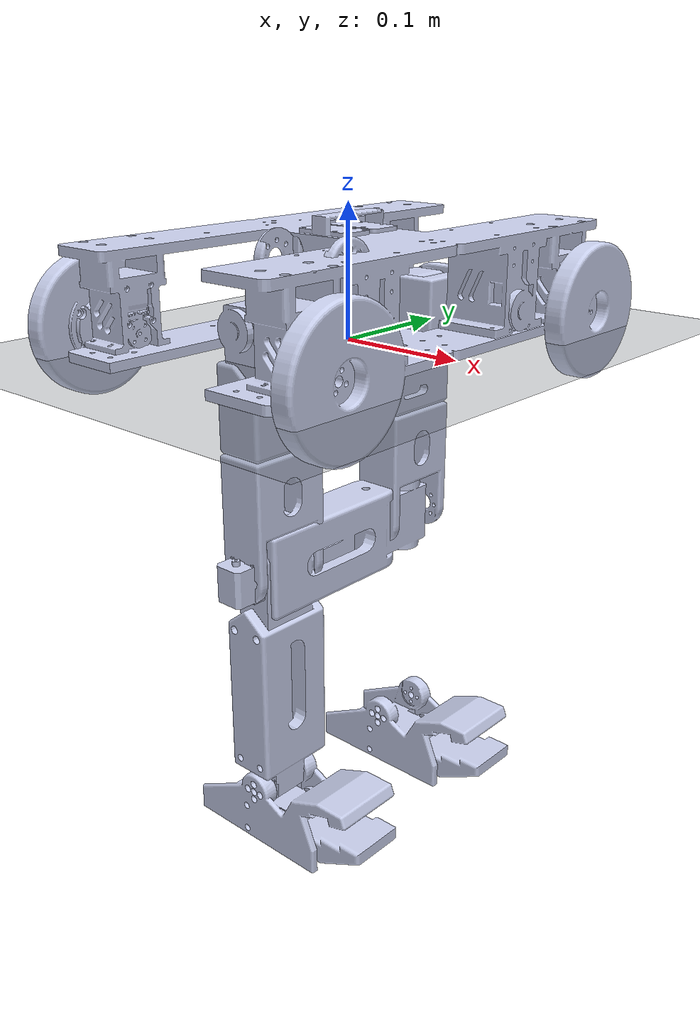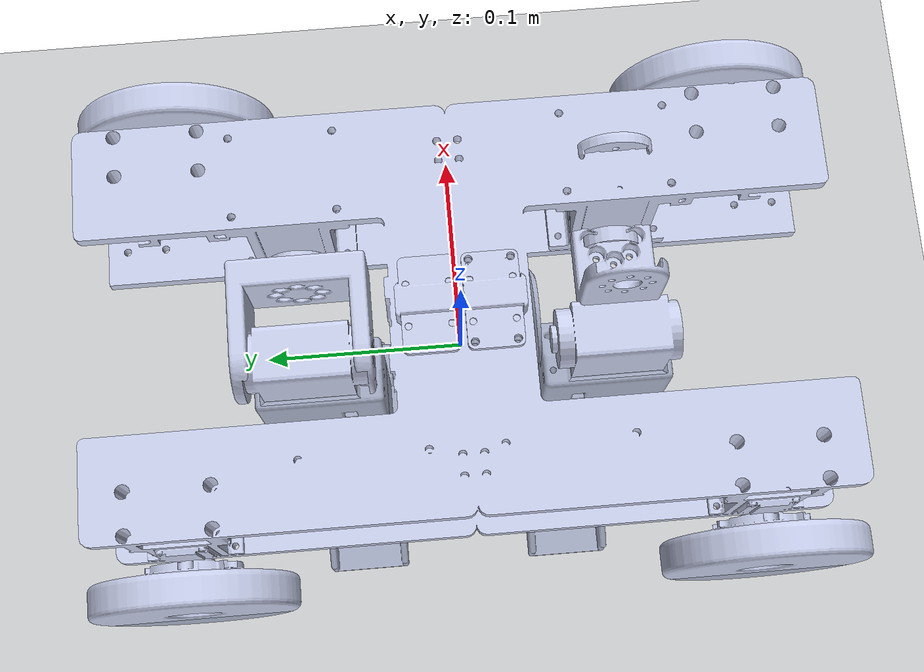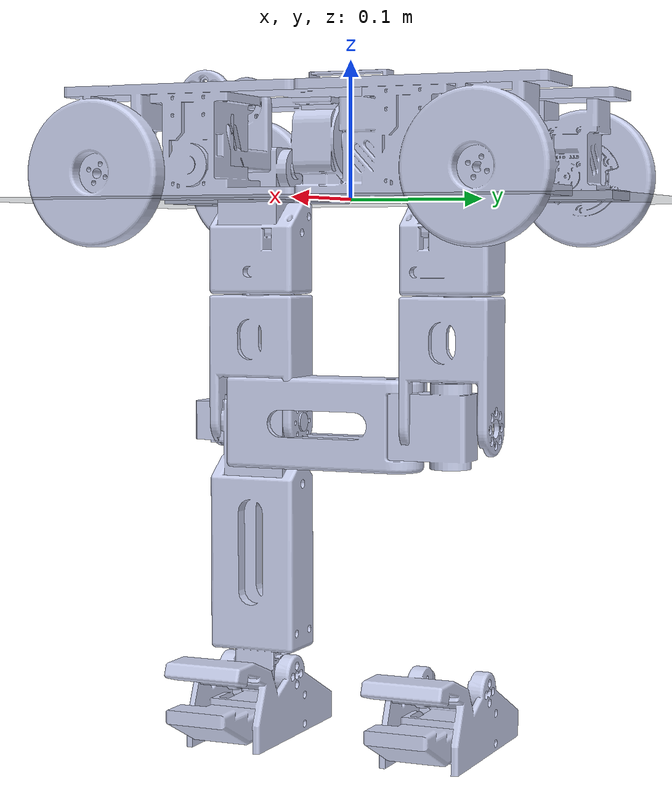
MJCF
<mujoco model="Fulltrans">
  <compiler angle="radian" meshdir="/home/lenovo-loq/Desktop/TransformBipedal_Simulation/FullForm/meshes/"/>

  <asset>
    <mesh name="Baselink" file="Baselink.STL"/>
    <mesh name="IMUleft" file="IMUleft.STL"/>
    <mesh name="IMUright" file="IMUright.STL"/>
    <mesh name="Bubleft" file="Bubleft.STL"/>
    <mesh name="Hipleft_fixed" file="Hipleft_fixed.STL"/>
    <mesh name="Twistleft" file="Twistleft.STL"/>
    <mesh name="Kneeleft" file="Kneeleft.STL"/>
    <mesh name="Footleft" file="Footleft.STL"/>
    <mesh name="Bubright" file="Bubright.STL"/>
    <mesh name="Hipright_fixed" file="Hipright_fixed.STL"/>
    <mesh name="Twistright" file="Twistright.STL"/>
    <mesh name="Kneeright" file="Kneeright.STL"/>
    <mesh name="Footright" file="Footright.STL"/>
  </asset>

  <worldbody>
    <geom name="floor" size="5 5 0.1" type="plane" rgba="0.35 0.38 0.42 1"/>
    <light pos="0 0 3" dir="0 0 -1" type="directional"/>
    <body name="Baselink">
      <inertial pos="0.0177911 -0.000635638 0.0390763" quat="-0.00258177 0.70659 -0.00201003 0.707615" mass="1.22784" diaginertia="0.00558072 0.00367027 0.00229888"/>
      <joint type="free"/>
      <geom type="mesh" rgba="0.792157 0.819608 0.933333 1" mesh="Baselink"/>
      <body name="IMUleft" pos="-2.3585e-05 -0.015 0.0851" quat="-2.59734e-06 0.707105 -0.707108 2.59735e-06">
        <inertial pos="0.00129188 4.07734e-06 0.00236819" quat="0.518251 0.517605 -0.481816 0.480994" mass="0.00446702" diaginertia="9.08703e-07 6.8303e-07 3.76042e-07"/>
        <geom type="mesh" rgba="0.792157 0.819608 0.933333 1" mesh="IMUleft"/>
      </body>
      <body name="IMUright" pos="0 0.015 0.0851" quat="-2.59734e-06 0.707105 0.707108 -2.59735e-06">
        <inertial pos="0.000870136 6.27414e-09 0.00672513" quat="0.583905 0.583905 -0.398817 0.398817" mass="0.00662927" diaginertia="2.01524e-06 1.89257e-06 9.54365e-07"/>
        <geom type="mesh" rgba="0.792157 0.819608 0.933333 1" mesh="IMUright"/>
      </body>
      <body name="Bubleft" pos="0.04025 -0.07995 0.0229">
        <inertial pos="-0.0169537 -0.000710753 1.81785e-08" quat="0.515234 0.484288 -0.515233 0.484287" mass="0.0588146" diaginertia="5.59461e-05 4.86446e-05 2.45895e-05"/>
        <joint name="Bubleft_joint" pos="0 0 0" axis="-1 0 0" range="-0.25 3.1382" actuatorfrcrange="-10.3 10.3" armature="0.08"/>
        <geom type="mesh" rgba="0.792157 0.819608 0.933333 1" mesh="Bubleft"/>
        <body name="Hipleft" pos="-0.04695 0.0003 0">
          <inertial pos="-0.000420505 0.00251977 -0.0421973" quat="0.504699 0.862412 -0.0203883 0.0332878" mass="0.226262" diaginertia="0.000137716 0.000101532 8.45504e-05"/>
          <joint name="Hipleft_joint" pos="0 0 0" axis="0 -1 0" range="-0.651 0.651" actuatorfrcrange="-10.3 10.3" armature="0.08"/>
          <geom type="mesh" rgba="0.792157 0.819608 0.933333 1" mesh="Hipleft_fixed"/>
          <body name="Twistleft" pos="0.0001 -0.0003 -0.09155">
            <inertial pos="-1.07076e-08 0.00397215 -0.0391681" quat="0.988229 -0.152984 0 0" mass="0.0860126" diaginertia="0.000122099 8.20701e-05 7.1975e-05"/>
            <joint name="Twistleft_joint" pos="0 0 0" axis="0 0 -1" range="-3.14 3.14" actuatorfrcrange="-2.94 2.94" armature="0.08"/>
            <geom type="mesh" rgba="0.792157 0.819608 0.933333 1" mesh="Twistleft"/>
            <body name="Kneeleft" pos="0 0.0048 -0.09355">
              <inertial pos="-9.06819e-05 2.18579e-05 -0.0856666" quat="0.999996 -0.00281179 7.22286e-09 2.56877e-06" mass="0.332394" diaginertia="0.00047372 0.000381551 0.000178541"/>
              <joint name="Kneeleft_joint" pos="0 0 0" axis="0 -1 0" range="-2.2 2.2" actuatorfrcrange="-10.3 10.3" armature="0.08"/>
              <geom type="mesh" rgba="0.792157 0.819608 0.933333 1" mesh="Kneeleft"/>
              <body name="Footleft" pos="-0.0003 -0.00125 -0.19">
                <inertial pos="0.036674 0.000787773 -0.0173791" quat="8.91563e-05 0.567813 0.000340765 0.823157" mass="0.213823" diaginertia="0.000295779 0.000254522 9.78886e-05"/>
                <joint name="Footleft_joint" pos="0 0 0" axis="0 -1 0" range="-1.1381 0.7027" actuatorfrcrange="-2.94 2.94" armature="0.08"/>
                <geom type="mesh" rgba="0.792157 0.819608 0.933333 1" mesh="Footleft"/>
              </body>
            </body>
          </body>
        </body>
      </body>
      <body name="Bubright" pos="0.04025 0.07995 0.0229">
        <inertial pos="-0.0169537 0.000710753 -1.81785e-08" quat="0.484287 0.515233 -0.484288 0.515234" mass="0.0588146" diaginertia="5.59461e-05 4.86446e-05 2.45895e-05"/>
        <joint name="Bubright_joint" pos="0 0 0" axis="1 0 0" range="-0.25 3.1382" actuatorfrcrange="-10.3 10.3" armature="0.08"/>
        <geom type="mesh" rgba="0.792157 0.819608 0.933333 1" mesh="Bubright"/>
        <body name="Hipright" pos="-0.04695 -0.0003 0">
          <inertial pos="-0.000420522 -0.00251974 -0.0421972" quat="0.862411 0.504701 -0.0332881 0.0203894" mass="0.226261" diaginertia="0.000137716 0.000101532 8.45506e-05"/>
          <joint name="Hipright_joint" pos="0 0 0" axis="0 -1 0" range="-0.651 0.651" actuatorfrcrange="-10.3 10.3" armature="0.08"/>
          <geom type="mesh" rgba="0.792157 0.819608 0.933333 1" mesh="Hipright_fixed"/>
          <body name="Twistright" pos="0.0001 0.0003 -0.09155">
            <inertial pos="1.01134e-08 -0.00397215 -0.0391681" quat="0.988229 0.152984 0 0" mass="0.0860126" diaginertia="0.000122099 8.20701e-05 7.1975e-05"/>
            <joint name="Twistright_joint" pos="0 0 0" axis="0 0 1" range="-3.14 3.14" actuatorfrcrange="-2.94 2.94" armature="0.08"/>
            <geom type="mesh" rgba="0.792157 0.819608 0.933333 1" mesh="Twistright"/>
            <body name="Kneeright" pos="0 -0.0051 -0.09355">
              <inertial pos="9.06819e-05 -7.63338e-05 -0.0856666" quat="0.999996 0.00281179 -7.22286e-09 2.56877e-06" mass="0.332394" diaginertia="0.00047372 0.000381551 0.000178541"/>
              <joint name="Kneeright_joint" pos="0 0 0" axis="0 -1 0" range="-2.2 2.2" actuatorfrcrange="-10.3 10.3" armature="0.08"/>
              <geom type="mesh" rgba="0.792157 0.819608 0.933333 1" mesh="Kneeright"/>
              <body name="Footright" pos="0.0003 0.00105 -0.19">
                <inertial pos="0.036674 -0.000213862 -0.0172789" quat="8.91582e-05 0.567813 0.000340773 0.823157" mass="0.213823" diaginertia="0.000295779 0.000254522 9.78886e-05"/>
                <joint name="Footright_joint" pos="0 0 0" axis="0 -1 0" range="-1.1381 0.7027" actuatorfrcrange="-2.94 2.94" armature="0.08"/>
                <geom type="mesh" rgba="0.792157 0.819608 0.933333 1" mesh="Footright"/>
              </body>
            </body>
          </body>
        </body>
      </body>
    </body>
  </worldbody>

  <contact>
    <exclude name="Baselink__IMUleft" body1="Baselink" body2="IMUleft"/>
    <exclude name="Baselink__IMUright" body1="Baselink" body2="IMUright"/>
    <exclude name="Baselink__Bubleft" body1="Baselink" body2="Bubleft"/>
    <exclude name="Baselink__Hipleft" body1="Baselink" body2="Hipleft"/>
    <exclude name="Baselink__Twistleft" body1="Baselink" body2="Twistleft"/>
    <exclude name="Baselink__Bubright" body1="Baselink" body2="Bubright"/>
    <exclude name="Baselink__Hipright" body1="Baselink" body2="Hipright"/>
    <exclude name="Baselink__Twistright" body1="Baselink" body2="Twistright"/>
    <exclude name="Bubleft__Hipleft" body1="Bubleft" body2="Hipleft"/>
    <exclude name="Bubleft__Twistleft" body1="Bubleft" body2="Twistleft"/>
    <exclude name="Bubleft__Kneeleft" body1="Bubleft" body2="Kneeleft"/>
    <exclude name="Hipleft__Twistleft" body1="Hipleft" body2="Twistleft"/>
    <exclude name="Hipleft__Kneeleft" body1="Hipleft" body2="Kneeleft"/>
    <exclude name="Footleft__Hipleft" body1="Hipleft" body2="Footleft"/>
    <exclude name="Kneeleft__Twistleft" body1="Twistleft" body2="Kneeleft"/>
    <exclude name="Footleft__Twistleft" body1="Twistleft" body2="Footleft"/>
    <exclude name="Footleft__Kneeleft" body1="Kneeleft" body2="Footleft"/>
    <exclude name="Bubright__Hipright" body1="Bubright" body2="Hipright"/>
    <exclude name="Bubright__Twistright" body1="Bubright" body2="Twistright"/>
    <exclude name="Bubright__Kneeright" body1="Bubright" body2="Kneeright"/>
    <exclude name="Hipright__Twistright" body1="Hipright" body2="Twistright"/>
    <exclude name="Hipright__Kneeright" body1="Hipright" body2="Kneeright"/>
    <exclude name="Footright__Hipright" body1="Hipright" body2="Footright"/>
    <exclude name="Kneeright__Twistright" body1="Twistright" body2="Kneeright"/>
    <exclude name="Footright__Twistright" body1="Twistright" body2="Footright"/>
    <exclude name="Footright__Kneeright" body1="Kneeright" body2="Footright"/>
  </contact>

  <actuator>
    <general name="Bubleft_joint" joint="Bubleft_joint" ctrllimited="true" ctrlrange="-0.25 3.1382" biastype="affine" gainprm="40" biasprm="0 -40 -4"/>
    <general name="Hipleft_joint" joint="Hipleft_joint" ctrllimited="true" ctrlrange="-0.651 0.651" biastype="affine" gainprm="40" biasprm="0 -40 -4"/>
    <general name="Twistleft_joint" joint="Twistleft_joint" ctrllimited="true" ctrlrange="-3.14 3.14" biastype="affine" gainprm="40" biasprm="0 -40 -4"/>
    <general name="Kneeleft_joint" joint="Kneeleft_joint" ctrllimited="true" ctrlrange="-2.2 2.2" biastype="affine" gainprm="40" biasprm="0 -40 -4"/>
    <general name="Footleft_joint" joint="Footleft_joint" ctrllimited="true" ctrlrange="-1.1381 0.7027" biastype="affine" gainprm="40" biasprm="0 -40 -4"/>
    <general name="Bubright_joint" joint="Bubright_joint" ctrllimited="true" ctrlrange="-0.25 3.1382" biastype="affine" gainprm="40" biasprm="0 -40 -4"/>
    <general name="Hipright_joint" joint="Hipright_joint" ctrllimited="true" ctrlrange="-0.651 0.651" biastype="affine" gainprm="40" biasprm="0 -40 -4"/>
    <general name="Twistright_joint" joint="Twistright_joint" ctrllimited="true" ctrlrange="-3.14 3.14" biastype="affine" gainprm="40" biasprm="0 -40 -4"/>
    <general name="Kneeright_joint" joint="Kneeright_joint" ctrllimited="true" ctrlrange="-2.2 2.2" biastype="affine" gainprm="40" biasprm="0 -40 -4"/>
    <general name="Footright_joint" joint="Footright_joint" ctrllimited="true" ctrlrange="-1.1381 0.7027" biastype="affine" gainprm="40" biasprm="0 -40 -4"/>
  </actuator>
</mujoco>
